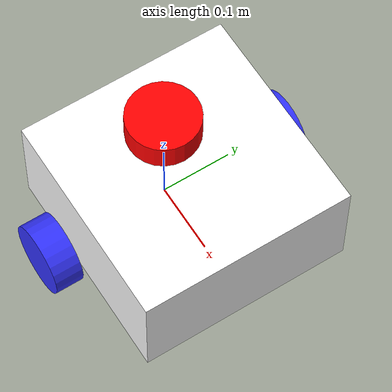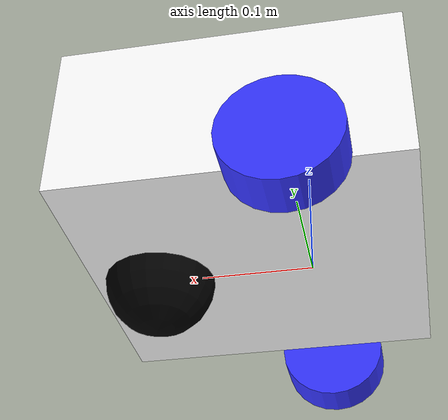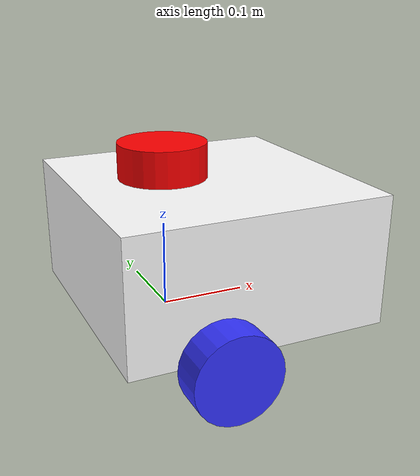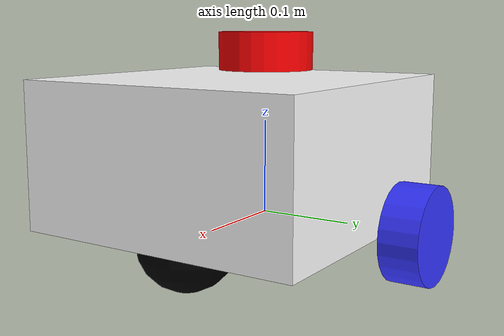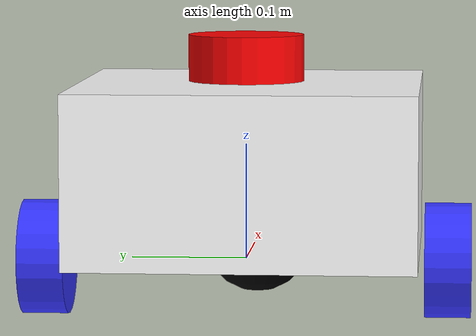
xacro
<?xml version="1.0"?>
<robot xmlns:xacro="http://www.ros.org/wiki/xacro"
       name="robot">

  <xacro:arg name="use_ros2_control" default="false"/>
  <xacro:arg name="sim_mode"        default="false"/>

  <!-- ถ้าเปิด ros2_control ก็ include macro ตัวนั้น -->
  <xacro:if value="$(arg use_ros2_control)">
    <xacro:include filename="ros2_control.xacro"/>
  </xacro:if>

  <!-- ส่วนประกอบหลักอื่นๆ -->
  <xacro:include filename="robot_core.xacro"/>
  <xacro:include filename="inertial_macros.xacro"/>
  <xacro:include filename="gazebo_control.xacro"/>
  <xacro:include filename="lidar.xacro"/>
  <xacro:include filename="camera.xacro"/>

</robot>

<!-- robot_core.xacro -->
<robot xmlns:xacro="http://www.ros.org/wiki/xacro">

  <xacro:include filename="inertial_macros.xacro"/>

  <!-- Materials -->
  <material name="white"><color rgba="1 1 1 1"/></material>
  <material name="orange"><color rgba="1 0.3 0.1 1"/></material>
  <material name="blue"><color rgba="0.2 0.2 1 1"/></material>
  <material name="black"><color rgba="0 0 0 1"/></material>
  <material name="red"><color rgba="1 0 0 1"/></material>

  <!-- Base -->
  <link name="base_link"></link>

  <joint name="base_footprint" type="fixed">
    <parent link="base_link"/>
    <child link="base_footprint"/>
    <origin xyz="0 0 0" rpy="0 0 0"/>
  </joint>

  <link name="base_footprint">
    </link>

  <!-- Chassis -->
  <joint name="chassis_joint" type="fixed">
    <parent link="base_link"/>
    <child link="chassis"/>
    <origin xyz="-0.1 0 0"/>
  </joint>

  <link name="chassis">
    <visual>
      <origin xyz="0.15 0 0.075"/>
      <geometry><box size="0.3 0.3 0.15"/></geometry>
      <material name="white"/>
    </visual>

    <collision>
      <origin xyz="0.15 0 0.075"/>
      <geometry><box size="0.3 0.3 0.15"/></geometry>
    </collision>
    <xacro:inertial_box mass="0.5" x="0.3" y="0.3" z="0.15">
      <origin xyz="0.15 0 0.075"/>
    </xacro:inertial_box>

  </link>

  <gazebo reference="chassis">
      <material>Gazebo/Red</material>
  </gazebo>

  <!-- Left Wheel -->
  <joint name="left_wheel_joint" type="continuous">
    <parent link="base_link"/>
    <child link="left_wheel"/>
    <origin xyz="0 0.175 0" rpy="-${pi/2} 0 0"/>
    <axis xyz="0 0 1"/>
  </joint>

  <link name="left_wheel">
    <visual>
      <geometry>
        <cylinder radius="0.05" length="0.04"/>
      </geometry>
      <material name="blue"/>
    </visual>
    <collision>
      <geometry>
        <cylinder radius="0.05" length="0.04"/>
      </geometry>
    </collision>
    <xacro:inertial_cylinder mass="0.1" radius="0.05" length="0.04">
      <origin xyz="0 0 0" rpy="0 0 0"/>
    </xacro:inertial_cylinder>
  </link>

  <gazebo reference="left_wheel">
    <material>Gazebo/Blue</material>
  </gazebo>
  <!-- Right Wheel -->
  <joint name="right_wheel_joint" type="continuous">
    <parent link="base_link"/>
    <child link="right_wheel"/>
    <origin xyz="0 -0.175 0" rpy="${pi/2} 0 0"/>
    <axis xyz="0 0 -1"/>
  </joint>

  <link name="right_wheel">
    <visual>
      <geometry>
        <cylinder radius="0.05" length="0.04"/>
      </geometry>
      <material name="blue"/>
    </visual>
    <collision>
      <geometry>
        <cylinder radius="0.05" length="0.04"/>
      </geometry>
    </collision>
    <xacro:inertial_cylinder mass="0.1" radius="0.05" length="0.04">
      <origin xyz="0 0 0" rpy="0 0 0"/>
    </xacro:inertial_cylinder>

  </link>
  <gazebo reference="right_wheel">
    <material>Gazebo/Blue</material>
  </gazebo>
  <!-- Caster Wheel -->
<joint name="caster_joint" type="fixed">
  <parent link="chassis"/>
  <child link="caster_wheel"/>
  <origin xyz="0.24 0 0"/>
</joint>

<link name="caster_wheel">
  <visual>
    <geometry><sphere radius="0.05"/></geometry>
    <material name="black"/>
  </visual>
  <collision>
    <geometry><sphere radius="0.05"/></geometry>
    <material name="black"/>
  </collision>

  <xacro:inertial_sphere mass="0.1" radius="0.05">
    <origin xyz="0 0 0" rpy="0 0 0"/>
  </xacro:inertial_sphere>

</link>
  <gazebo reference="caster_wheel">
    <material>Gazebo/Black</material>
    <mu1 value ="0.001"/>
    <mu2 value ="0.001"/>
  </gazebo>
</robot>

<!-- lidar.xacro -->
<robot xmlns:xacro="http://www.ros.org/wiki/xacro">
  <joint name="laser_joint" type="fixed">
    <parent link="chassis"/>
    <child link="laser_frame"/>
    <origin xyz="0.1 0 0.175" rpy="0 0 0"/>
  </joint>

  <link name="laser_frame">
    <visual>
      <geometry>
        <cylinder radius="0.05" length="0.04"/>
      </geometry>
      <material name="red"/>
    </visual>
    <collision>
      <geometry>
        <cylinder radius="0.05" length="0.04"/>
      </geometry>
    </collision>
    <xacro:inertial_cylinder mass="0.1" radius="0.05" length="0.04">
      <origin xyz="0 0 0" rpy="0 0 0"/>
    </xacro:inertial_cylinder>
  </link>

  <gazebo reference="laser_frame">
    <!-- แก้ไข: Gazebo ไม่ใช่ Gazrbo -->
    <material>Gazebo/Red</material>

    <sensor name="laser" type="ray">
      <pose>0 0 0 0 0 0</pose>
      <visualize>true</visualize>
      <update_rate>10</update_rate>
      <ray>
        <scan>
          <horizontal>
            <samples>360</samples>
            <resolution>1</resolution>
            <min_angle>-3.14159</min_angle>
            <max_angle>3.14159</max_angle>
          </horizontal>
        </scan>
        <range>
          <min>0.3</min>
          <max>12.0</max>
          <resolution>0.01</resolution>
        </range>
        <noise>
          <type>gaussian</type>
          <mean>0.0</mean>
          <stddev>0.01</stddev>
        </noise>
      </ray>

      <!-- แก้ไข plugin สำหรับ ROS2 Humble -->
      <plugin name="laser_controller" filename="libgazebo_ros_ray_sensor.so">
        <ros>
          <namespace>/</namespace>
          <remapping>~/out:=scan</remapping>
        </ros>
        <output_type>sensor_msgs/LaserScan</output_type>
        <frame_name>laser_frame</frame_name>
      </plugin>
    </sensor>
  </gazebo>
</robot>

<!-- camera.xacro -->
<robot xmlns:xacro="http://www.ros.org/wiki/xacro" >

    <joint name="camera_joint" type="fixed">
        <parent link="chassis"/>
        <child link="camera_link"/>
        <origin xyz="0.25 0 0.08" rpy="0 0 0"/>
    </joint>

    <link name="camera_link">
        <visual>
            <geometry>
                <box size="0.03 0.07 0.02"/>
            </geometry>
            <material name="blue"/>
        </visual>
    </link>

    <joint name="camera_optical_joint" type="fixed">
        <parent link="camera_link"/>
        <child link="camera_link_optical"/>
        <origin xyz="0 0 0" rpy="${-pi/2} 0 ${-pi/2}"/>
    </joint>

    <link name="camera_link_optical"></link>

    <gazebo reference="camera_link">
        <material>Gazebo/Blue</material>

        <sensor name="camera" type="camera">
            <pose> 0 0 0 0 0 0 </pose>
            <visualize>true</visualize>
            <update_rate>10</update_rate>
            <camera>
                <horizontal_fov>1.089</horizontal_fov>
                <image>
                    <format>R8G8B8</format>
                    <width>640</width>
                    <height>480</height> <!--The image is 640x480 pixels, stored as 8-bit RGB-->
                </image>
                <clip>
                    <near>0.05</near>
                    <far>8.0</far>
                </clip>
            </camera>
            <plugin name="camera_controller" filename="libgazebo_ros_camera.so">
                <frame_name>camera_link_optical</frame_name>
            </plugin>
        </sensor>
    </gazebo>

</robot>
